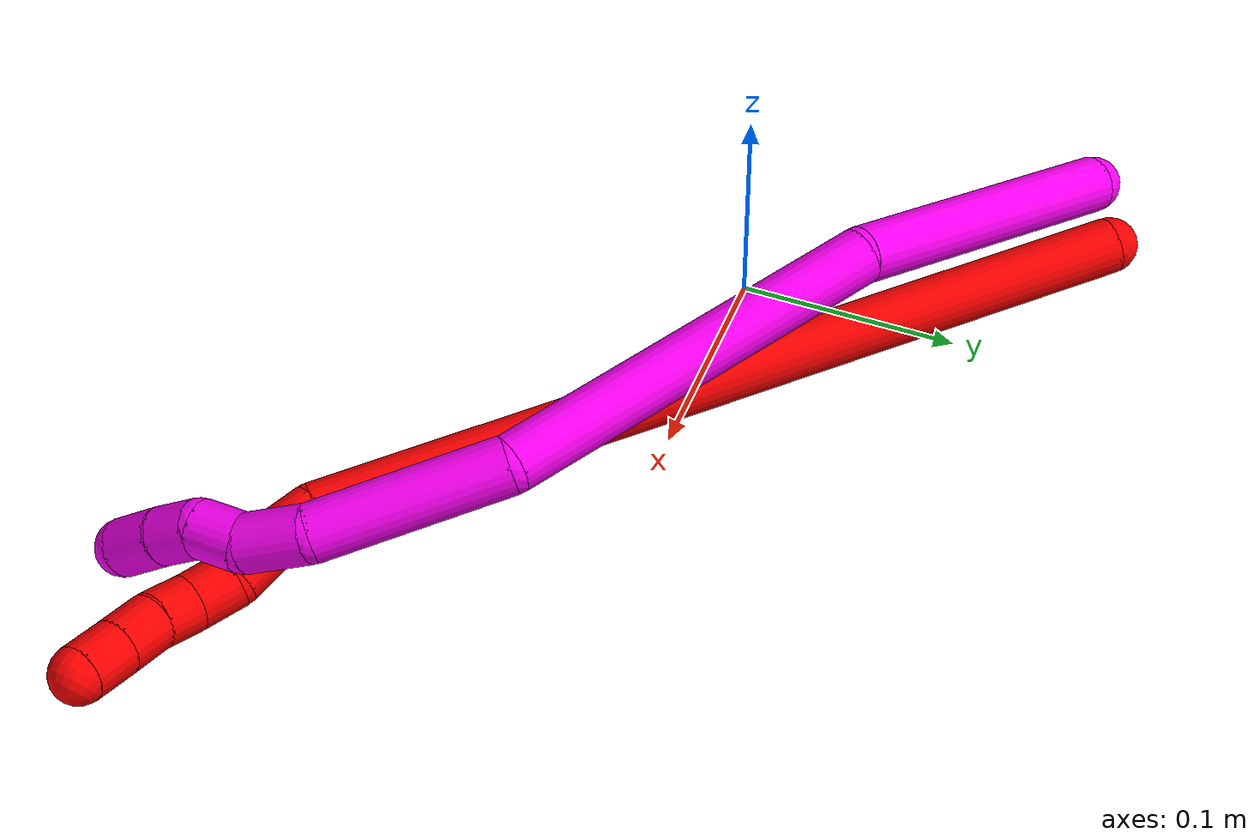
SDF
<sdf version="1.7">
 <world name="default">
  <model name="2">
   <static>0</static>
   <link name="2">
    <collision name="collision-cylinder-e_1_1_4">
     <pose>0.103837 -0.074644 -0.13721 2.64336 0.58669 1.74166</pose>
     <geometry><cylinder><radius>0.0125</radius><length>0.375129</length></cylinder></geometry>
     <surface>
      <friction><ode><mu>1.16</mu><mu2>1.16</mu2><slip1>0</slip1><slip2>0</slip2></ode></friction>
      <contact><ode><kp>1e+06</kp><kd>1</kd><max_vel>0</max_vel><min_depth>0.001</min_depth></ode></contact>
     </surface>
    </collision>
    <visual name="visual-cylinder-e_1_1_4">
     <pose>0.103837 -0.074644 -0.13721 2.64336 0.58669 1.74166</pose>
     <geometry><cylinder><radius>0.0125</radius><length>0.375129</length></cylinder></geometry>
     <material><ambient>1 0 0 1</ambient></material>
    </visual>
    <collision name="collision-cylinder-e_2_4_5">
     <pose>0.213124 -0.150231 -0.285324 3.05542 0.461964 2.77899</pose>
     <geometry><cylinder><radius>0.0125</radius><length>0.024452</length></cylinder></geometry>
     <surface>
      <friction><ode><mu>1.16</mu><mu2>1.16</mu2><slip1>0</slip1><slip2>0</slip2></ode></friction>
      <contact><ode><kp>1e+06</kp><kd>1</kd><max_vel>0</max_vel><min_depth>0.001</min_depth></ode></contact>
     </surface>
    </collision>
    <visual name="visual-cylinder-e_2_4_5">
     <pose>0.213124 -0.150231 -0.285324 3.05542 0.461964 2.77899</pose>
     <geometry><cylinder><radius>0.0125</radius><length>0.024452</length></cylinder></geometry>
     <material><ambient>1 0 0 1</ambient></material>
    </visual>
    <collision name="collision-cylinder-e_3_5_6">
     <pose>0.221786 -0.151277 -0.305787 3.13069 0.324186 3.07493</pose>
     <geometry><cylinder><radius>0.0125</radius><length>0.020171</length></cylinder></geometry>
     <surface>
      <friction><ode><mu>1.16</mu><mu2>1.16</mu2><slip1>0</slip1><slip2>0</slip2></ode></friction>
      <contact><ode><kp>1e+06</kp><kd>1</kd><max_vel>0</max_vel><min_depth>0.001</min_depth></ode></contact>
     </surface>
    </collision>
    <visual name="visual-cylinder-e_3_5_6">
     <pose>0.221786 -0.151277 -0.305787 3.13069 0.324186 3.07493</pose>
     <geometry><cylinder><radius>0.0125</radius><length>0.020171</length></cylinder></geometry>
     <material><ambient>1 0 0 1</ambient></material>
    </visual>
    <collision name="collision-cylinder-e_4_6_7">
     <pose>0.229701 -0.153856 -0.323886 2.85953 0.486568 2.10243</pose>
     <geometry><cylinder><radius>0.0125</radius><length>0.020115</length></cylinder></geometry>
     <surface>
      <friction><ode><mu>1.16</mu><mu2>1.16</mu2><slip1>0</slip1><slip2>0</slip2></ode></friction>
      <contact><ode><kp>1e+06</kp><kd>1</kd><max_vel>0</max_vel><min_depth>0.001</min_depth></ode></contact>
     </surface>
    </collision>
    <visual name="visual-cylinder-e_4_6_7">
     <pose>0.229701 -0.153856 -0.323886 2.85953 0.486568 2.10243</pose>
     <geometry><cylinder><radius>0.0125</radius><length>0.020115</length></cylinder></geometry>
     <material><ambient>1 0 0 1</ambient></material>
    </visual>
    <collision name="collision-cylinder-e_5_7_8">
     <pose>0.241048 -0.154807 -0.339748 -2.93649 0.72633 -2.61266</pose>
     <geometry><cylinder><radius>0.0125</radius><length>0.020009</length></cylinder></geometry>
     <surface>
      <friction><ode><mu>1.16</mu><mu2>1.16</mu2><slip1>0</slip1><slip2>0</slip2></ode></friction>
      <contact><ode><kp>1e+06</kp><kd>1</kd><max_vel>0</max_vel><min_depth>0.001</min_depth></ode></contact>
     </surface>
    </collision>
    <visual name="visual-cylinder-e_5_7_8">
     <pose>0.241048 -0.154807 -0.339748 -2.93649 0.72633 -2.61266</pose>
     <geometry><cylinder><radius>0.0125</radius><length>0.020009</length></cylinder></geometry>
     <material><ambient>1 0 0 1</ambient></material>
    </visual>
    <collision name="collision-cylinder-e_6_8_9">
     <pose>0.253131 -0.151403 -0.355261 -2.9159 0.574396 -2.40885</pose>
     <geometry><cylinder><radius>0.0125</radius><length>0.02002</length></cylinder></geometry>
     <surface>
      <friction><ode><mu>1.16</mu><mu2>1.16</mu2><slip1>0</slip1><slip2>0</slip2></ode></friction>
      <contact><ode><kp>1e+06</kp><kd>1</kd><max_vel>0</max_vel><min_depth>0.001</min_depth></ode></contact>
     </surface>
    </collision>
    <visual name="visual-cylinder-e_6_8_9">
     <pose>0.253131 -0.151403 -0.355261 -2.9159 0.574396 -2.40885</pose>
     <geometry><cylinder><radius>0.0125</radius><length>0.02002</length></cylinder></geometry>
     <material><ambient>1 0 0 1</ambient></material>
    </visual>
    <collision name="collision-cylinder-e_7_9_2">
     <pose>0.264146 -0.147614 -0.371594 -2.91142 0.588039 -2.41222</pose>
     <geometry><cylinder><radius>0.0125</radius><length>0.020103</length></cylinder></geometry>
     <surface>
      <friction><ode><mu>1.16</mu><mu2>1.16</mu2><slip1>0</slip1><slip2>0</slip2></ode></friction>
      <contact><ode><kp>1e+06</kp><kd>1</kd><max_vel>0</max_vel><min_depth>0.001</min_depth></ode></contact>
     </surface>
    </collision>
    <visual name="visual-cylinder-e_7_9_2">
     <pose>0.264146 -0.147614 -0.371594 -2.91142 0.588039 -2.41222</pose>
     <geometry><cylinder><radius>0.0125</radius><length>0.020103</length></cylinder></geometry>
     <material><ambient>1 0 0 1</ambient></material>
    </visual>
    <collision name="collision-sphere-2">
     <pose>0.269722 -0.145706 -0.379737 0 -0 0</pose>
     <geometry><sphere><radius>0.0125</radius></sphere></geometry>
     <surface>
      <friction><ode><mu>1.16</mu><mu2>1.16</mu2><slip1>0</slip1><slip2>0</slip2></ode></friction>
      <contact><ode><kp>1e+06</kp><kd>1</kd><max_vel>0</max_vel><min_depth>0.001</min_depth></ode></contact>
     </surface>
    </collision>
    <visual name="visual-sphere-2">
     <pose>0.269722 -0.145706 -0.379737 0 -0 0</pose>
     <geometry><sphere><radius>0.0125</radius></sphere></geometry>
     <material><ambient>1 0 0 1</ambient></material>
    </visual>
    <collision name="collision-sphere-9">
     <pose>0.25857 -0.149522 -0.363451 0 -0 0</pose>
     <geometry><sphere><radius>0.0125</radius></sphere></geometry>
     <surface>
      <friction><ode><mu>1.16</mu><mu2>1.16</mu2><slip1>0</slip1><slip2>0</slip2></ode></friction>
      <contact><ode><kp>1e+06</kp><kd>1</kd><max_vel>0</max_vel><min_depth>0.001</min_depth></ode></contact>
     </surface>
    </collision>
    <visual name="visual-sphere-9">
     <pose>0.25857 -0.149522 -0.363451 0 -0 0</pose>
     <geometry><sphere><radius>0.0125</radius></sphere></geometry>
     <material><ambient>1 0 0 1</ambient></material>
    </visual>
    <collision name="collision-sphere-4">
     <pose>0.207674 -0.149289 -0.27442 0 -0 0</pose>
     <geometry><sphere><radius>0.0125</radius></sphere></geometry>
     <surface>
      <friction><ode><mu>1.16</mu><mu2>1.16</mu2><slip1>0</slip1><slip2>0</slip2></ode></friction>
      <contact><ode><kp>1e+06</kp><kd>1</kd><max_vel>0</max_vel><min_depth>0.001</min_depth></ode></contact>
     </surface>
    </collision>
    <visual name="visual-sphere-4">
     <pose>0.207674 -0.149289 -0.27442 0 -0 0</pose>
     <geometry><sphere><radius>0.0125</radius></sphere></geometry>
     <material><ambient>1 0 0 1</ambient></material>
    </visual>
    <collision name="collision-sphere-1">
     <geometry><sphere><radius>0.0125</radius></sphere></geometry>
     <surface>
      <friction><ode><mu>1.16</mu><mu2>1.16</mu2><slip1>0</slip1><slip2>0</slip2></ode></friction>
      <contact><ode><kp>1e+06</kp><kd>1</kd><max_vel>0</max_vel><min_depth>0.001</min_depth></ode></contact>
     </surface>
    </collision>
    <visual name="visual-sphere-1">
     <geometry><sphere><radius>0.0125</radius></sphere></geometry>
     <material><ambient>1 0 0 1</ambient></material>
    </visual>
    <collision name="collision-sphere-8">
     <pose>0.247693 -0.153283 -0.34707 0 -0 0</pose>
     <geometry><sphere><radius>0.0125</radius></sphere></geometry>
     <surface>
      <friction><ode><mu>1.16</mu><mu2>1.16</mu2><slip1>0</slip1><slip2>0</slip2></ode></friction>
      <contact><ode><kp>1e+06</kp><kd>1</kd><max_vel>0</max_vel><min_depth>0.001</min_depth></ode></contact>
     </surface>
    </collision>
    <visual name="visual-sphere-8">
     <pose>0.247693 -0.153283 -0.34707 0 -0 0</pose>
     <geometry><sphere><radius>0.0125</radius></sphere></geometry>
     <material><ambient>1 0 0 1</ambient></material>
    </visual>
    <collision name="collision-sphere-5">
     <pose>0.218573 -0.151173 -0.296228 0 -0 0</pose>
     <geometry><sphere><radius>0.0125</radius></sphere></geometry>
     <surface>
      <friction><ode><mu>1.16</mu><mu2>1.16</mu2><slip1>0</slip1><slip2>0</slip2></ode></friction>
      <contact><ode><kp>1e+06</kp><kd>1</kd><max_vel>0</max_vel><min_depth>0.001</min_depth></ode></contact>
     </surface>
    </collision>
    <visual name="visual-sphere-5">
     <pose>0.218573 -0.151173 -0.296228 0 -0 0</pose>
     <geometry><sphere><radius>0.0125</radius></sphere></geometry>
     <material><ambient>1 0 0 1</ambient></material>
    </visual>
    <collision name="collision-sphere-6">
     <pose>0.224998 -0.151381 -0.315347 0 -0 0</pose>
     <geometry><sphere><radius>0.0125</radius></sphere></geometry>
     <surface>
      <friction><ode><mu>1.16</mu><mu2>1.16</mu2><slip1>0</slip1><slip2>0</slip2></ode></friction>
      <contact><ode><kp>1e+06</kp><kd>1</kd><max_vel>0</max_vel><min_depth>0.001</min_depth></ode></contact>
     </surface>
    </collision>
    <visual name="visual-sphere-6">
     <pose>0.224998 -0.151381 -0.315347 0 -0 0</pose>
     <geometry><sphere><radius>0.0125</radius></sphere></geometry>
     <material><ambient>1 0 0 1</ambient></material>
    </visual>
    <collision name="collision-sphere-7">
     <pose>0.234404 -0.15633 -0.332425 0 -0 0</pose>
     <geometry><sphere><radius>0.0125</radius></sphere></geometry>
     <surface>
      <friction><ode><mu>1.16</mu><mu2>1.16</mu2><slip1>0</slip1><slip2>0</slip2></ode></friction>
      <contact><ode><kp>1e+06</kp><kd>1</kd><max_vel>0</max_vel><min_depth>0.001</min_depth></ode></contact>
     </surface>
    </collision>
    <visual name="visual-sphere-7">
     <pose>0.234404 -0.15633 -0.332425 0 -0 0</pose>
     <geometry><sphere><radius>0.0125</radius></sphere></geometry>
     <material><ambient>1 0 0 1</ambient></material>
    </visual>
    <inertial>
     <pose>0.136918 -0.093834 -0.185024 0 -0 0</pose>
     <mass>0.5</mass>
     <inertia>
      <ixx>0.003011</ixx>
      <ixy>0</ixy>
      <ixz>0</ixz>
      <iyy>0.005428</iyy>
      <iyz>0</iyz>
      <izz>-0.000722</izz>
     </inertia>
    </inertial>
   </link>
   <pose>-0.050139 0.155041 0.035823 0.878008 -0.899943 -1.13442</pose>
  </model>
  <model name="10">
   <static>0</static>
   <link name="10">
    <collision name="collision-cylinder-e_1_1_4">
     <pose>0.022538 -0.005519 0.065628 0.083893 0.329729 0.013966</pose>
     <geometry><cylinder><radius>0.0125</radius><length>0.139218</length></cylinder></geometry>
     <surface>
      <friction><ode><mu>1.16</mu><mu2>1.16</mu2><slip1>0</slip1><slip2>0</slip2></ode></friction>
      <contact><ode><kp>1e+06</kp><kd>1</kd><max_vel>0</max_vel><min_depth>0.001</min_depth></ode></contact>
     </surface>
    </collision>
    <visual name="visual-cylinder-e_1_1_4">
     <pose>0.022538 -0.005519 0.065628 0.083893 0.329729 0.013966</pose>
     <geometry><cylinder><radius>0.0125</radius><length>0.139218</length></cylinder></geometry>
     <material><ambient>1 0 0.964706 1</ambient></material>
    </visual>
    <collision name="collision-cylinder-e_2_4_5">
     <pose>0.091639 -0.033569 0.205395 0.295034 0.541075 0.082376</pose>
     <geometry><cylinder><radius>0.0125</radius><length>0.180803</length></cylinder></geometry>
     <surface>
      <friction><ode><mu>1.16</mu><mu2>1.16</mu2><slip1>0</slip1><slip2>0</slip2></ode></friction>
      <contact><ode><kp>1e+06</kp><kd>1</kd><max_vel>0</max_vel><min_depth>0.001</min_depth></ode></contact>
     </surface>
    </collision>
    <visual name="visual-cylinder-e_2_4_5">
     <pose>0.091639 -0.033569 0.205395 0.295034 0.541075 0.082376</pose>
     <geometry><cylinder><radius>0.0125</radius><length>0.180803</length></cylinder></geometry>
     <material><ambient>1 0 0.964706 1</ambient></material>
    </visual>
    <collision name="collision-cylinder-e_3_5_6">
     <pose>0.151407 -0.081334 0.310313 0.686723 0.320385 0.115407</pose>
     <geometry><cylinder><radius>0.0125</radius><length>0.083868</length></cylinder></geometry>
     <surface>
      <friction><ode><mu>1.16</mu><mu2>1.16</mu2><slip1>0</slip1><slip2>0</slip2></ode></friction>
      <contact><ode><kp>1e+06</kp><kd>1</kd><max_vel>0</max_vel><min_depth>0.001</min_depth></ode></contact>
     </surface>
    </collision>
    <visual name="visual-cylinder-e_3_5_6">
     <pose>0.151407 -0.081334 0.310313 0.686723 0.320385 0.115407</pose>
     <geometry><cylinder><radius>0.0125</radius><length>0.083868</length></cylinder></geometry>
     <material><ambient>1 0 0.964706 1</ambient></material>
    </visual>
    <collision name="collision-cylinder-e_4_6_7">
     <pose>0.166107 -0.119047 0.349023 1.00469 0.100696 0.05535</pose>
     <geometry><cylinder><radius>0.0125</radius><length>0.029725</length></cylinder></geometry>
     <surface>
      <friction><ode><mu>1.16</mu><mu2>1.16</mu2><slip1>0</slip1><slip2>0</slip2></ode></friction>
      <contact><ode><kp>1e+06</kp><kd>1</kd><max_vel>0</max_vel><min_depth>0.001</min_depth></ode></contact>
     </surface>
    </collision>
    <visual name="visual-cylinder-e_4_6_7">
     <pose>0.166107 -0.119047 0.349023 1.00469 0.100696 0.05535</pose>
     <geometry><cylinder><radius>0.0125</radius><length>0.029725</length></cylinder></geometry>
     <material><ambient>1 0 0.964706 1</ambient></material>
    </visual>
    <collision name="collision-cylinder-e_5_7_8">
     <pose>0.164139 -0.140204 0.362275 1.02069 -0.327902 -0.184699</pose>
     <geometry><cylinder><radius>0.0125</radius><length>0.021502</length></cylinder></geometry>
     <surface>
      <friction><ode><mu>1.16</mu><mu2>1.16</mu2><slip1>0</slip1><slip2>0</slip2></ode></friction>
      <contact><ode><kp>1e+06</kp><kd>1</kd><max_vel>0</max_vel><min_depth>0.001</min_depth></ode></contact>
     </surface>
    </collision>
    <visual name="visual-cylinder-e_5_7_8">
     <pose>0.164139 -0.140204 0.362275 1.02069 -0.327902 -0.184699</pose>
     <geometry><cylinder><radius>0.0125</radius><length>0.021502</length></cylinder></geometry>
     <material><ambient>1 0 0.964706 1</ambient></material>
    </visual>
    <collision name="collision-cylinder-e_6_8_9">
     <pose>0.161726 -0.158427 0.370857 1.24163 0.103634 0.074146</pose>
     <geometry><cylinder><radius>0.0125</radius><length>0.020284</length></cylinder></geometry>
     <surface>
      <friction><ode><mu>1.16</mu><mu2>1.16</mu2><slip1>0</slip1><slip2>0</slip2></ode></friction>
      <contact><ode><kp>1e+06</kp><kd>1</kd><max_vel>0</max_vel><min_depth>0.001</min_depth></ode></contact>
     </surface>
    </collision>
    <visual name="visual-cylinder-e_6_8_9">
     <pose>0.161726 -0.158427 0.370857 1.24163 0.103634 0.074146</pose>
     <geometry><cylinder><radius>0.0125</radius><length>0.020284</length></cylinder></geometry>
     <material><ambient>1 0 0.964706 1</ambient></material>
    </visual>
    <collision name="collision-cylinder-e_7_9_2">
     <pose>0.164467 -0.179766 0.377175 1.31716 0.137997 0.106854</pose>
     <geometry><cylinder><radius>0.0125</radius><length>0.0246</length></cylinder></geometry>
     <surface>
      <friction><ode><mu>1.16</mu><mu2>1.16</mu2><slip1>0</slip1><slip2>0</slip2></ode></friction>
      <contact><ode><kp>1e+06</kp><kd>1</kd><max_vel>0</max_vel><min_depth>0.001</min_depth></ode></contact>
     </surface>
    </collision>
    <visual name="visual-cylinder-e_7_9_2">
     <pose>0.164467 -0.179766 0.377175 1.31716 0.137997 0.106854</pose>
     <geometry><cylinder><radius>0.0125</radius><length>0.0246</length></cylinder></geometry>
     <material><ambient>1 0 0.964706 1</ambient></material>
    </visual>
    <collision name="collision-sphere-2">
     <pose>0.166159 -0.19156 0.380232 0 -0 0</pose>
     <geometry><sphere><radius>0.0125</radius></sphere></geometry>
     <surface>
      <friction><ode><mu>1.16</mu><mu2>1.16</mu2><slip1>0</slip1><slip2>0</slip2></ode></friction>
      <contact><ode><kp>1e+06</kp><kd>1</kd><max_vel>0</max_vel><min_depth>0.001</min_depth></ode></contact>
     </surface>
    </collision>
    <visual name="visual-sphere-2">
     <pose>0.166159 -0.19156 0.380232 0 -0 0</pose>
     <geometry><sphere><radius>0.0125</radius></sphere></geometry>
     <material><ambient>1 0 0.964706 1</ambient></material>
    </visual>
    <collision name="collision-sphere-9">
     <pose>0.162775 -0.167973 0.374118 0 -0 0</pose>
     <geometry><sphere><radius>0.0125</radius></sphere></geometry>
     <surface>
      <friction><ode><mu>1.16</mu><mu2>1.16</mu2><slip1>0</slip1><slip2>0</slip2></ode></friction>
      <contact><ode><kp>1e+06</kp><kd>1</kd><max_vel>0</max_vel><min_depth>0.001</min_depth></ode></contact>
     </surface>
    </collision>
    <visual name="visual-sphere-9">
     <pose>0.162775 -0.167973 0.374118 0 -0 0</pose>
     <geometry><sphere><radius>0.0125</radius></sphere></geometry>
     <material><ambient>1 0 0.964706 1</ambient></material>
    </visual>
    <collision name="collision-sphere-4">
     <pose>0.045077 -0.011037 0.131255 0 -0 0</pose>
     <geometry><sphere><radius>0.0125</radius></sphere></geometry>
     <surface>
      <friction><ode><mu>1.16</mu><mu2>1.16</mu2><slip1>0</slip1><slip2>0</slip2></ode></friction>
      <contact><ode><kp>1e+06</kp><kd>1</kd><max_vel>0</max_vel><min_depth>0.001</min_depth></ode></contact>
     </surface>
    </collision>
    <visual name="visual-sphere-4">
     <pose>0.045077 -0.011037 0.131255 0 -0 0</pose>
     <geometry><sphere><radius>0.0125</radius></sphere></geometry>
     <material><ambient>1 0 0.964706 1</ambient></material>
    </visual>
    <collision name="collision-sphere-1">
     <geometry><sphere><radius>0.0125</radius></sphere></geometry>
     <surface>
      <friction><ode><mu>1.16</mu><mu2>1.16</mu2><slip1>0</slip1><slip2>0</slip2></ode></friction>
      <contact><ode><kp>1e+06</kp><kd>1</kd><max_vel>0</max_vel><min_depth>0.001</min_depth></ode></contact>
     </surface>
    </collision>
    <visual name="visual-sphere-1">
     <geometry><sphere><radius>0.0125</radius></sphere></geometry>
     <material><ambient>1 0 0.964706 1</ambient></material>
    </visual>
    <collision name="collision-sphere-8">
     <pose>0.160676 -0.148881 0.367596 0 -0 0</pose>
     <geometry><sphere><radius>0.0125</radius></sphere></geometry>
     <surface>
      <friction><ode><mu>1.16</mu><mu2>1.16</mu2><slip1>0</slip1><slip2>0</slip2></ode></friction>
      <contact><ode><kp>1e+06</kp><kd>1</kd><max_vel>0</max_vel><min_depth>0.001</min_depth></ode></contact>
     </surface>
    </collision>
    <visual name="visual-sphere-8">
     <pose>0.160676 -0.148881 0.367596 0 -0 0</pose>
     <geometry><sphere><radius>0.0125</radius></sphere></geometry>
     <material><ambient>1 0 0.964706 1</ambient></material>
    </visual>
    <collision name="collision-sphere-5">
     <pose>0.138201 -0.0561 0.279535 0 -0 0</pose>
     <geometry><sphere><radius>0.0125</radius></sphere></geometry>
     <surface>
      <friction><ode><mu>1.16</mu><mu2>1.16</mu2><slip1>0</slip1><slip2>0</slip2></ode></friction>
      <contact><ode><kp>1e+06</kp><kd>1</kd><max_vel>0</max_vel><min_depth>0.001</min_depth></ode></contact>
     </surface>
    </collision>
    <visual name="visual-sphere-5">
     <pose>0.138201 -0.0561 0.279535 0 -0 0</pose>
     <geometry><sphere><radius>0.0125</radius></sphere></geometry>
     <material><ambient>1 0 0.964706 1</ambient></material>
    </visual>
    <collision name="collision-sphere-6">
     <pose>0.164613 -0.106567 0.341092 0 -0 0</pose>
     <geometry><sphere><radius>0.0125</radius></sphere></geometry>
     <surface>
      <friction><ode><mu>1.16</mu><mu2>1.16</mu2><slip1>0</slip1><slip2>0</slip2></ode></friction>
      <contact><ode><kp>1e+06</kp><kd>1</kd><max_vel>0</max_vel><min_depth>0.001</min_depth></ode></contact>
     </surface>
    </collision>
    <visual name="visual-sphere-6">
     <pose>0.164613 -0.106567 0.341092 0 -0 0</pose>
     <geometry><sphere><radius>0.0125</radius></sphere></geometry>
     <material><ambient>1 0 0.964706 1</ambient></material>
    </visual>
    <collision name="collision-sphere-7">
     <pose>0.167601 -0.131527 0.356954 0 -0 0</pose>
     <geometry><sphere><radius>0.0125</radius></sphere></geometry>
     <surface>
      <friction><ode><mu>1.16</mu><mu2>1.16</mu2><slip1>0</slip1><slip2>0</slip2></ode></friction>
      <contact><ode><kp>1e+06</kp><kd>1</kd><max_vel>0</max_vel><min_depth>0.001</min_depth></ode></contact>
     </surface>
    </collision>
    <visual name="visual-sphere-7">
     <pose>0.167601 -0.131527 0.356954 0 -0 0</pose>
     <geometry><sphere><radius>0.0125</radius></sphere></geometry>
     <material><ambient>1 0 0.964706 1</ambient></material>
    </visual>
    <inertial>
     <pose>0.096395 -0.055696 0.214527 0 -0 0</pose>
     <mass>0.5</mass>
     <inertia>
      <ixx>0.00076</ixx>
      <ixy>0</ixy>
      <ixz>0</ixz>
      <iyy>0.000787</iyy>
      <iyz>0</iyz>
      <izz>-0.000137</izz>
     </inertia>
    </inertial>
   </link>
   <pose>-0.071627 0.139941 0.049462 0.934221 0.609094 0.374715</pose>
  </model>
 </world>
</sdf>
